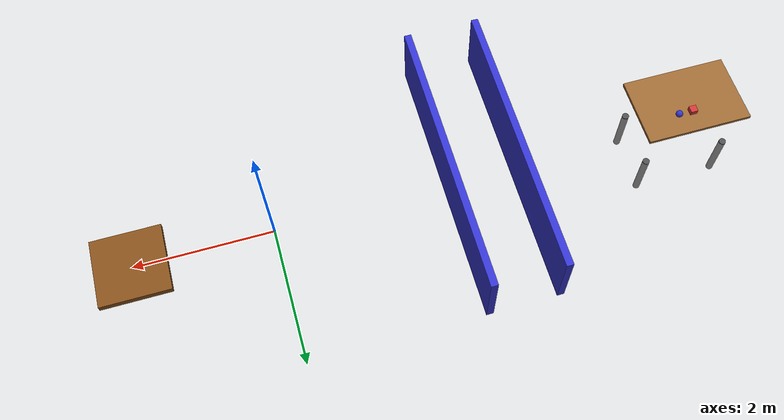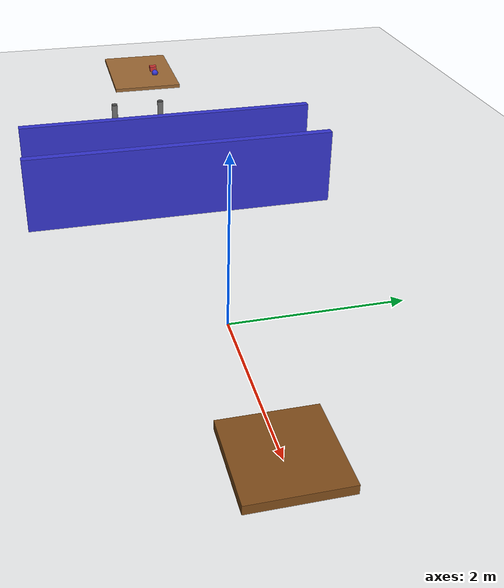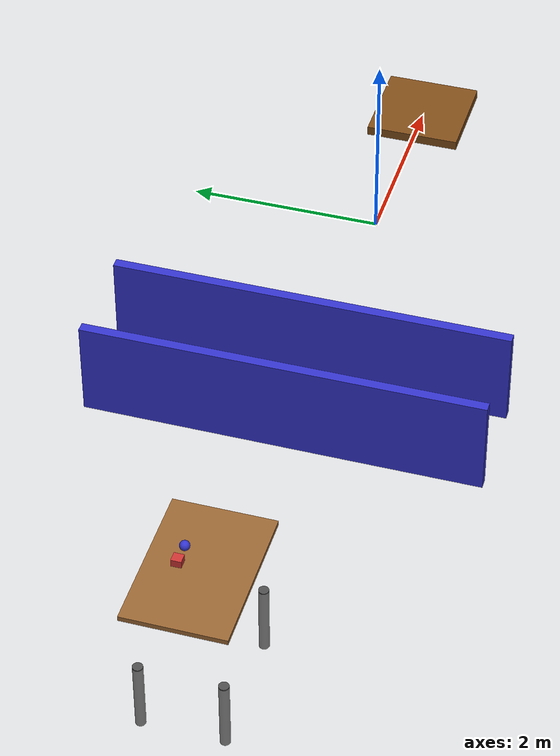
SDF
<sdf version="1.7">
 <world name="humanoid_training_area">
  <physics name="ode_physics" type="ode">
   <gravity>0 0 -9.8</gravity>
   <ode>
    <solver><type>quick</type><iters>10</iters><sor>1.3</sor></solver>
    <constraints>
     <contact_max_correcting_vel>100.0</contact_max_correcting_vel>
     <contact_surface_layer>0.001</contact_surface_layer>
    </constraints>
   </ode>
   <max_step_size>0.001</max_step_size>
   <real_time_factor>1</real_time_factor>
   <real_time_update_rate>1000</real_time_update_rate>
  </physics>
  <include><uri>model://ground_plane</uri></include>
  <include><uri>model://sun</uri></include>
  <model name="walking_path">
   <link name="path_base">
    <collision name="path_collision">
     <geometry><plane><normal>0 0 1</normal><size>20 20</size></plane></geometry>
    </collision>
    <visual name="path_visual">
     <geometry><plane><normal>0 0 1</normal><size>20 20</size></plane></geometry>
     <material>
      <ambient>0.7 0.7 0.7 1</ambient>
      <diffuse>0.7 0.7 0.7 1</diffuse>
      <specular>0.0 0.0 0.0 1</specular>
     </material>
    </visual>
    <inertial>
     <mass>1e6</mass>
     <inertia><ixx>1e6</ixx><ixy>0</ixy><ixz>0</ixz><iyy>1e6</iyy><iyz>0</iyz><izz>1e6</izz></inertia>
    </inertial>
   </link>
  </model>
  <model name="step_obstacle_1">
   <pose>2 0 0.05 0 0 0</pose>
   <link name="step_link">
    <collision name="step_collision"><geometry><box><size>1 1 0.1</size></box></geometry></collision>
    <visual name="step_visual">
     <geometry><box><size>1 1 0.1</size></box></geometry>
     <material><ambient>0.5 0.3 0.1 1</ambient><diffuse>0.5 0.3 0.1 1</diffuse></material>
    </visual>
    <inertial>
     <mass>10</mass>
     <inertia><ixx>0.33</ixx><ixy>0</ixy><ixz>0</ixz><iyy>0.33</iyy><iyz>0</iyz><izz>0.17</izz></inertia>
    </inertial>
   </link>
  </model>
  <model name="narrow_passage">
   <pose>-3 0 0 0 0 0</pose>
   <link name="wall_1">
    <pose>-0.5 0 0.5 0 0 0</pose>
    <collision name="wall_1_collision"><geometry><box><size>0.1 4 1</size></box></geometry></collision>
    <visual name="wall_1_visual">
     <geometry><box><size>0.1 4 1</size></box></geometry>
     <material><ambient>0.2 0.2 0.8 1</ambient><diffuse>0.2 0.2 0.8 1</diffuse></material>
    </visual>
    <inertial>
     <mass>20</mass>
     <inertia><ixx>1.33</ixx><ixy>0</ixy><ixz>0</ixz><iyy>0.085</iyy><iyz>0</iyz><izz>1.41</izz></inertia>
    </inertial>
   </link>
   <link name="wall_2">
    <pose>0.5 0 0.5 0 0 0</pose>
    <collision name="wall_2_collision"><geometry><box><size>0.1 4 1</size></box></geometry></collision>
    <visual name="wall_2_visual">
     <geometry><box><size>0.1 4 1</size></box></geometry>
     <material><ambient>0.2 0.2 0.8 1</ambient><diffuse>0.2 0.2 0.8 1</diffuse></material>
    </visual>
    <inertial>
     <mass>20</mass>
     <inertia><ixx>1.33</ixx><ixy>0</ixy><ixz>0</ixz><iyy>0.085</iyy><iyz>0</iyz><izz>1.41</izz></inertia>
    </inertial>
   </link>
  </model>
  <model name="manipulation_table">
   <pose>-6 0 0 0 0 0</pose>
   <link name="table_top">
    <pose>0 0 0.75 0 0 0</pose>
    <collision name="table_collision"><geometry><box><size>1.5 1 0.05</size></box></geometry></collision>
    <visual name="table_visual">
     <geometry><box><size>1.5 1 0.05</size></box></geometry>
     <material><ambient>0.6 0.4 0.2 1</ambient><diffuse>0.6 0.4 0.2 1</diffuse></material>
    </visual>
    <inertial>
     <mass>25</mass>
     <inertia><ixx>2.6</ixx><ixy>0</ixy><ixz>0</ixz><iyy>3.9</iyy><iyz>0</iyz><izz>1.3</izz></inertia>
    </inertial>
   </link>
   <link name="table_leg_1">
    <pose>-0.6 0.4 -0.375 0 0 0</pose>
    <collision name="leg_1_collision">
     <geometry><cylinder><radius>0.05</radius><length>0.75</length></cylinder></geometry>
    </collision>
    <visual name="leg_1_visual">
     <geometry><cylinder><radius>0.05</radius><length>0.75</length></cylinder></geometry>
     <material><ambient>0.3 0.3 0.3 1</ambient><diffuse>0.3 0.3 0.3 1</diffuse></material>
    </visual>
    <inertial>
     <mass>2</mass>
     <inertia><ixx>0.063</ixx><ixy>0</ixy><ixz>0</ixz><iyy>0.063</iyy><iyz>0</iyz><izz>0.0025</izz></inertia>
    </inertial>
   </link>
   <link name="table_leg_2">
    <pose>0.6 0.4 -0.375 0 0 0</pose>
    <collision name="leg_2_collision">
     <geometry><cylinder><radius>0.05</radius><length>0.75</length></cylinder></geometry>
    </collision>
    <visual name="leg_2_visual">
     <geometry><cylinder><radius>0.05</radius><length>0.75</length></cylinder></geometry>
     <material><ambient>0.3 0.3 0.3 1</ambient><diffuse>0.3 0.3 0.3 1</diffuse></material>
    </visual>
    <inertial>
     <mass>2</mass>
     <inertia><ixx>0.063</ixx><ixy>0</ixy><ixz>0</ixz><iyy>0.063</iyy><iyz>0</iyz><izz>0.0025</izz></inertia>
    </inertial>
   </link>
   <link name="table_leg_3">
    <pose>-0.6 -0.4 -0.375 0 0 0</pose>
    <collision name="leg_3_collision">
     <geometry><cylinder><radius>0.05</radius><length>0.75</length></cylinder></geometry>
    </collision>
    <visual name="leg_3_visual">
     <geometry><cylinder><radius>0.05</radius><length>0.75</length></cylinder></geometry>
     <material><ambient>0.3 0.3 0.3 1</ambient><diffuse>0.3 0.3 0.3 1</diffuse></material>
    </visual>
    <inertial>
     <mass>2</mass>
     <inertia><ixx>0.063</ixx><ixy>0</ixy><ixz>0</ixz><iyy>0.063</iyy><iyz>0</iyz><izz>0.0025</izz></inertia>
    </inertial>
   </link>
   <link name="table_leg_4">
    <pose>0.6 -0.4 -0.375 0 0 0</pose>
    <collision name="leg_4_collision">
     <geometry><cylinder><radius>0.05</radius><length>0.75</length></cylinder></geometry>
    </collision>
    <visual name="leg_4_visual">
     <geometry><cylinder><radius>0.05</radius><length>0.75</length></cylinder></geometry>
     <material><ambient>0.3 0.3 0.3 1</ambient><diffuse>0.3 0.3 0.3 1</diffuse></material>
    </visual>
    <inertial>
     <mass>2</mass>
     <inertia><ixx>0.063</ixx><ixy>0</ixy><ixz>0</ixz><iyy>0.063</iyy><iyz>0</iyz><izz>0.0025</izz></inertia>
    </inertial>
   </link>
  </model>
  <model name="red_cube">
   <pose>-6 0.2 0.8 0 0 0</pose>
   <link name="cube_link">
    <collision name="cube_collision"><geometry><box><size>0.1 0.1 0.1</size></box></geometry></collision>
    <visual name="cube_visual">
     <geometry><box><size>0.1 0.1 0.1</size></box></geometry>
     <material><ambient>0.8 0.2 0.2 1</ambient><diffuse>0.8 0.2 0.2 1</diffuse></material>
    </visual>
    <inertial>
     <mass>0.1</mass>
     <inertia><ixx>0.00017</ixx><ixy>0</ixy><ixz>0</ixz><iyy>0.00017</iyy><iyz>0</iyz><izz>0.00017</izz></inertia>
    </inertial>
   </link>
  </model>
  <model name="blue_sphere">
   <pose>-5.8 0.2 0.8 0 0 0</pose>
   <link name="sphere_link">
    <collision name="sphere_collision"><geometry><sphere><radius>0.05</radius></sphere></geometry></collision>
    <visual name="sphere_visual">
     <geometry><sphere><radius>0.05</radius></sphere></geometry>
     <material><ambient>0.2 0.2 0.8 1</ambient><diffuse>0.2 0.2 0.8 1</diffuse></material>
    </visual>
    <inertial>
     <mass>0.05</mass>
     <inertia><ixx>5e-05</ixx><ixy>0</ixy><ixz>0</ixz><iyy>5e-05</iyy><iyz>0</iyz><izz>5e-05</izz></inertia>
    </inertial>
   </link>
  </model>
  <light name="training_area_light" type="point">
   <pose>0 0 5 0 0 0</pose>
   <diffuse>0.8 0.8 0.8 1</diffuse>
   <specular>0.8 0.8 0.8 1</specular>
   <attenuation>
    <range>20</range>
    <constant>0.5</constant>
    <linear>0.1</linear>
    <quadratic>0.01</quadratic>
   </attenuation>
  </light>
 </world>
</sdf>
